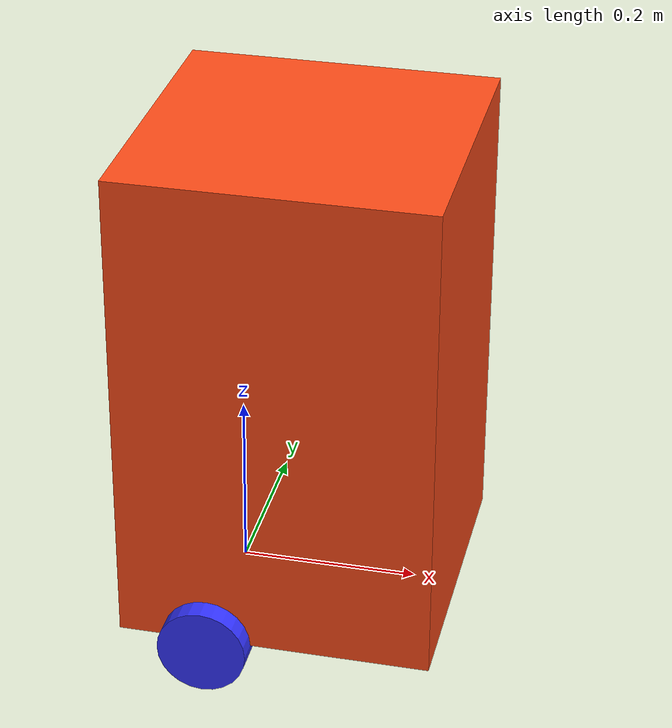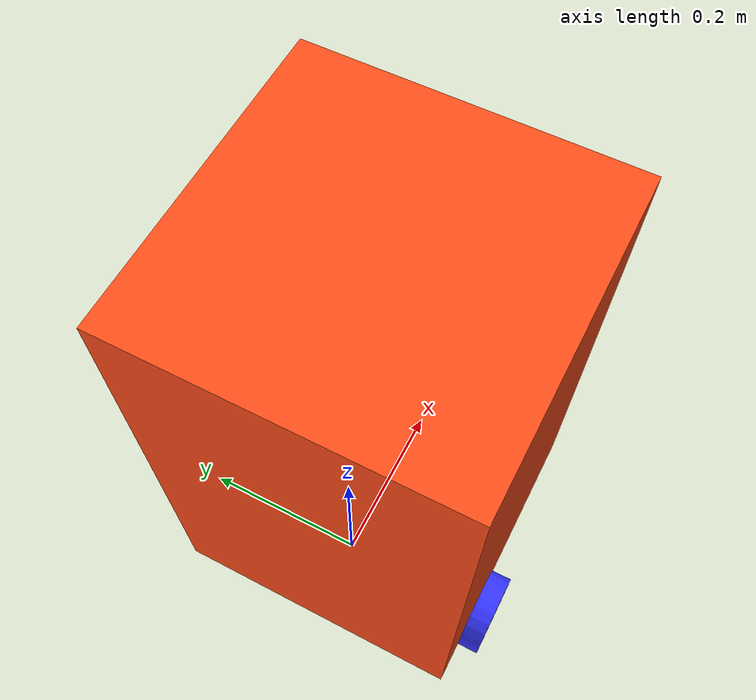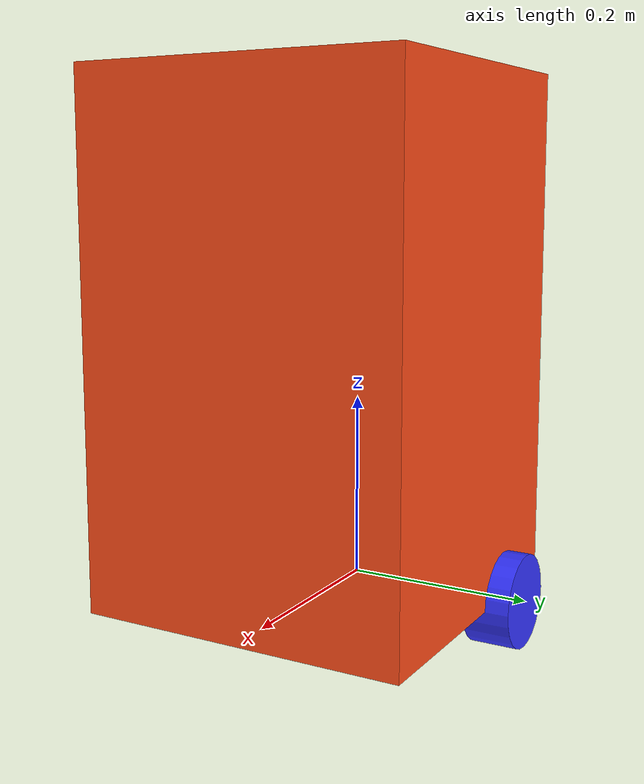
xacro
<?xml version="1.0"?>
<robot xmlns:xacro="http://www.ros.org/wiki/xacro" >

    <!-- INCLUDES -->

    <xacro:include filename="inertial_macros.xacro"/>
    <xacro:include filename="colors.xacro"/>
    <xacro:include filename="robot_params.xacro"/>

    <!-- BASE LINK -->

    <link name="base_link">

    </link>

    <!-- CHASSIS LINK -->

    <joint name="chassis_joint" type="fixed">
        <parent link="base_link"/>
        <child link="chassis"/>
        <origin xyz="${-wheel_offset_x} 0 0"/>
    </joint>

    <link name="chassis">
        <visual>
            <origin xyz="${chassis_length/2} 0 ${chassis_height/2}"/>
            <geometry>
                <box size="${chassis_length} ${chassis_width} ${chassis_height}"/>
            </geometry>
            <material name="orange"/>
        </visual>
        <collision>
            <origin xyz="${chassis_length/2} 0 ${chassis_height/2}"/>
            <geometry>
                <box size="${chassis_length} ${chassis_width} ${chassis_height}"/>
            </geometry>
        </collision>
        <xacro:inertial_box mass="${chassis_mass}" x="${chassis_length}" y="${chassis_width}" z="${chassis_height}">
            <origin xyz="${chassis_length/2} 0 ${chassis_height/2}" rpy="0 0 0"/>
        </xacro:inertial_box>
    </link>

    <gazebo reference="chassis">
        <material>Gazebo/TIT</material>
    </gazebo>

    <!-- LEFT WHEEL LINK -->

    <joint name="left_wheel_joint" type="continuous">
        <parent link="base_link"/>
        <child link="left_wheel"/>
        <origin xyz="0 ${wheel_offset_y} 0" rpy="-${pi/2} 0 0" />
        <axis xyz="0 0 1"/>
    </joint>

    <link name="left_wheel">
        <visual>
            <geometry>
                <cylinder radius="${wheel_radius}" length="${wheel_thickness}"/>
            </geometry>
            <material name="blue"/>
        </visual>
        <collision>
            <geometry>
                <cylinder radius="${wheel_radius}" length="${wheel_thickness}"/>
            </geometry>
        </collision>
        <xacro:inertial_cylinder mass="${wheel_mass}" length="${wheel_thickness}" radius="${wheel_radius}">
            <origin xyz="0 0 0" rpy="0 0 0"/>
        </xacro:inertial_cylinder>
    </link>

    <gazebo reference="left_wheel">
        <material>Gazebo/Blue</material>
    </gazebo>

    <!-- RIGHT WHEEL LINK -->

    <joint name="right_wheel_joint" type="continuous">
        <parent link="base_link"/>
        <child link="right_wheel"/>
        <origin xyz="0 ${-wheel_offset_y} 0" rpy="${pi/2} 0 0" />
        <axis xyz="0 0 -1"/>
    </joint>

    <link name="right_wheel">
        <visual>
            <geometry>
                <cylinder radius="${wheel_radius}" length="${wheel_thickness}"/>
            </geometry>
            <material name="blue"/>
        </visual>
        <collision>
            <geometry>
                <cylinder radius="${wheel_radius}" length="${wheel_thickness}"/>
            </geometry>
        </collision>
        <xacro:inertial_cylinder mass="${wheel_mass}" length="${wheel_thickness}" radius="${wheel_radius}">
            <origin xyz="0 0 0" rpy="0 0 0"/>
        </xacro:inertial_cylinder>
    </link>

    <gazebo reference="right_wheel">
        <material>Gazebo/Blue</material>
    </gazebo>

    <!-- CASTER WHEEL LINK -->

    <joint name="caster_wheel_joint" type="fixed">
        <parent link="chassis"/>
        <child link="caster_wheel"/>
        <origin xyz="${caster_wheel_offset_x} 0 0"/>
    </joint>

    <link name="caster_wheel">
        <visual>
            <geometry>
                <sphere radius="${caster_wheel_radius}"/>
            </geometry>
            <material name="white"/>
        </visual>
        <collision>
            <geometry>
                <sphere radius="${caster_wheel_radius}"/>
            </geometry>
        </collision>
        <xacro:inertial_sphere mass="${caster_wheel_mass}" radius="${caster_wheel_radius}">
            <origin xyz="0 0 0" rpy="0 0 0"/>
        </xacro:inertial_sphere>
    </link>

    <gazebo reference="caster_wheel">
        <material>Gazebo/White</material>
        <mu1 value="0.01"/>
        <mu2 value="0.01"/>
    </gazebo>

</robot>

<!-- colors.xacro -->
<robot xmlns:xacro="http://www.ros.org/wiki/xacro" >

    <material name="white">
        <color rgba="1 1 1 1" />
    </material>

    <material name="orange">
        <color rgba="1 0.3 0.1 1"/>
    </material>

    <material name="blue">
        <color rgba="0.2 0.2 1 1"/>
    </material>

    <material name="black">
        <color rgba="0 0 0 1"/>
    </material>

</robot>

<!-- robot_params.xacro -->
<robot xmlns:xacro="http://www.ros.org/wiki/xacro" >

    <!-- PARAMETERS -->

    <!-- Robot Physical Dimensions -->
    <xacro:property name="chassis_length" value="0.35"/>
    <xacro:property name="chassis_width" value="0.35"/>
    <xacro:property name="chassis_height" value="0.55"/>
    <xacro:property name="chassis_mass" value="0.8"/>

    <xacro:property name="wheel_mass" value="0.05"/>
    <xacro:property name="wheel_radius" value="0.05"/>
    <xacro:property name="wheel_diameter" value="${wheel_radius * 2}"/>
    <xacro:property name="wheel_thickness" value="0.05"/>
    <xacro:property name="wheel_offset_x" value="0.1"/>
    <xacro:property name="wheel_offset_y" value="0.175"/>
    <xacro:property name="wheel_separation" value="${wheel_offset_y * 2}"/>

    <xacro:property name="caster_wheel_offset_x" value="0.24"/>
    <xacro:property name="caster_wheel_radius" value="0.05"/>
    <xacro:property name="caster_wheel_mass" value="0.1"/>

    <!-- LiDAR Parameters -->
    <xacro:property name="laser_mass" value="0.1"/>
    <xacro:property name="laser_length" value="0.04"/>
    <xacro:property name="laser_radius" value="0.05"/>
    <xacro:property name="laser_update_rate" value="5"/>
    <xacro:property name="laser_samples" value="360"/>
    <xacro:property name="laser_min_angle" value="-3.14"/>
    <xacro:property name="laser_max_angle" value="3.14"/>
    <xacro:property name="laser_min_range" value="0.2"/>
    <xacro:property name="laser_max_range" value="12"/>
    <xacro:property name="laser_noise_mean" value="0.0"/>
    <xacro:property name="laser_noise_stddev" value="0.01"/>

    <!-- Camera Parameters -->
    <xacro:property name="camera_mass" value="0.03"/>
    <xacro:property name="camera_length" value="0.01"/>
    <xacro:property name="camera_width" value="0.03"/>
    <xacro:property name="camera_height" value="0.03"/>
    <xacro:property name="camera_update_rate" value="5"/>
    <xacro:property name="camera_horizontal_fov" value="1.089"/>
    <xacro:property name="camera_image_width" value="640"/>
    <xacro:property name="camera_image_height" value="480"/>
    <xacro:property name="camera_clip_near" value="0.1"/>
    <xacro:property name="camera_clip_far" value="20.0"/>

    <!-- GPS Parameters -->
    <xacro:property name="gps_mass" value="0.05"/>
    <xacro:property name="gps_update_rate" value="1"/>
    <xacro:property name="gps_noise_stddev" value="0.01"/>

    <!-- IMU Parameters -->
    <xacro:property name="imu_mass" value="0.05"/>
    <xacro:property name="imu_update_rate" value="200"/>
    <xacro:property name="imu_angular_velocity_stddev" value="2e-4"/>
    <xacro:property name="imu_linear_acceleration_stddev" value="1.7e-2"/>

</robot>
